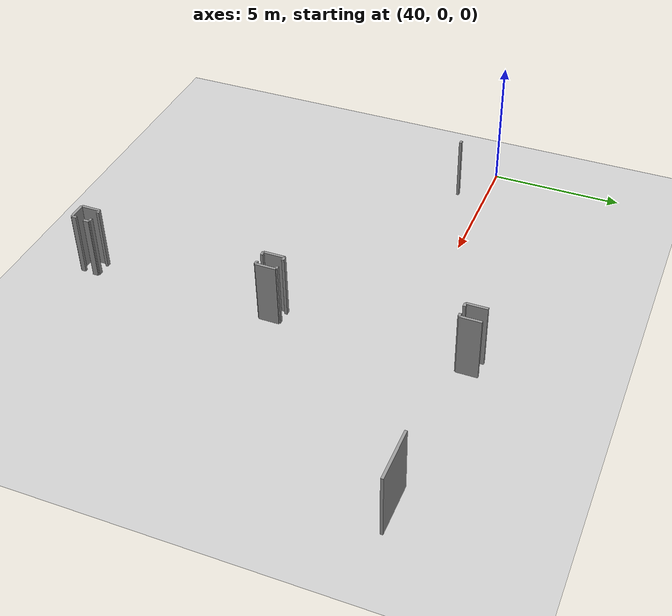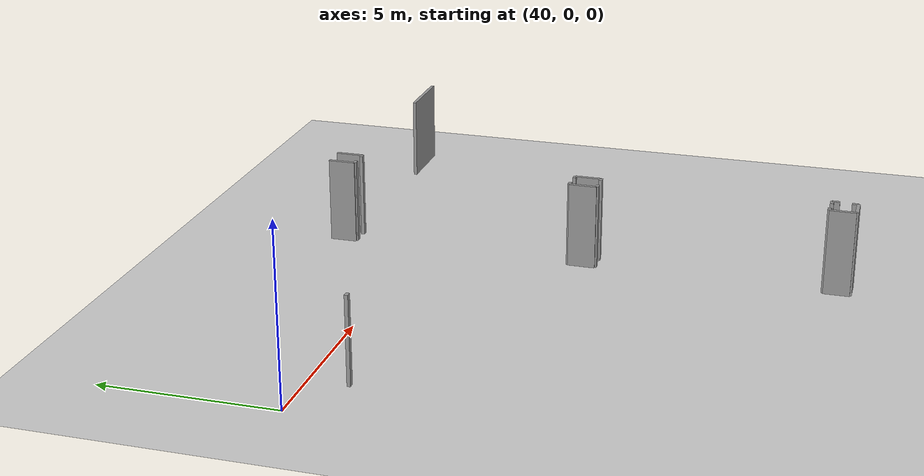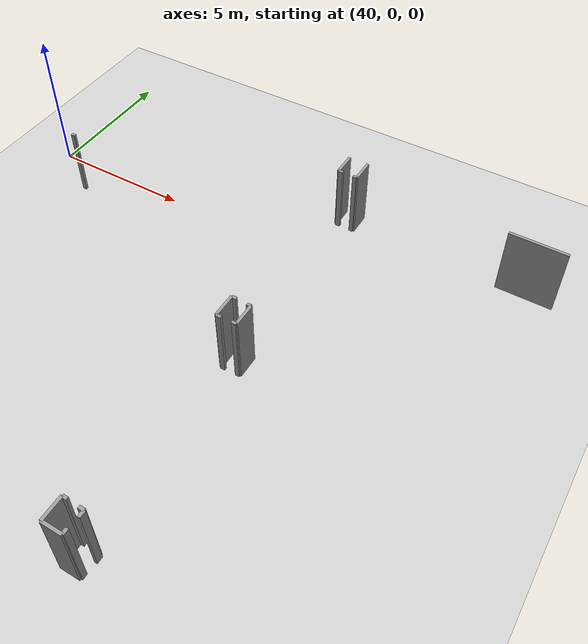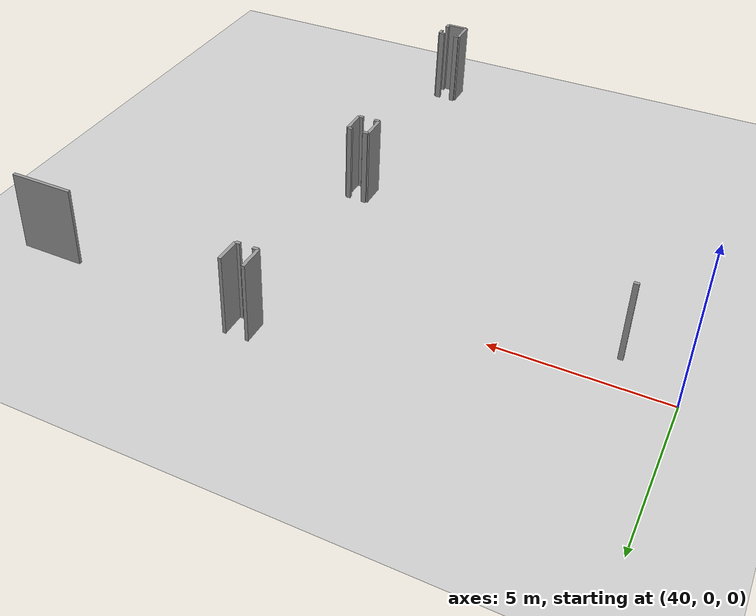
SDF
<sdf version="1.6">
 <world name="default">
  <model name="ground_plane">
   <static>1</static>
   <link name="link">
    <collision name="collision">
     <geometry><plane><normal>0 0 1</normal><size>100 100</size></plane></geometry>
     <surface><friction><ode><mu>100</mu><mu2>50</mu2></ode></friction></surface>
    </collision>
    <visual name="visual">
     <cast_shadows>0</cast_shadows>
     <geometry><plane><normal>0 0 1</normal><size>100 100</size></plane></geometry>
     <material>
      <script><uri>file://media/materials/scripts/gazebo.material</uri><name>Gazebo/Grey</name></script>
     </material>
    </visual>
   </link>
  </model>
  <model name="50010535_PLAN1">
   <static>1</static>
   <link name="Wall_369">
    <collision name="Wall_369_Collision">
     <geometry><box><size>0.149425360381 0.1 2.5</size></box></geometry>
     <pose>0.0747126801903 0 1.25 0 0 0</pose>
    </collision>
    <visual name="Wall_369_Visual">
     <pose>0.0747126801903 0 1.25 0 0 0</pose>
     <geometry><box><size>0.149425360381 0.1 2.5</size></box></geometry>
     <material>
      <script><uri>file://media/materials/scripts/gazebo.material</uri><name>Gazebo/Grey</name></script>
      <ambient>1 1 1 1</ambient>
     </material>
    </visual>
    <pose>144.397501954 -30.6105982732 0 0 0 3.14159265359</pose>
   </link>
   <link name="Wall_387">
    <collision name="Wall_387_Collision">
     <geometry><box><size>0.212702426256 0.1 2.5</size></box></geometry>
     <pose>0.106351213128 0 1.25 0 0 0</pose>
    </collision>
    <visual name="Wall_387_Visual">
     <pose>0.106351213128 0 1.25 0 0 0</pose>
     <geometry><box><size>0.212702426256 0.1 2.5</size></box></geometry>
     <material>
      <script><uri>file://media/materials/scripts/gazebo.material</uri><name>Gazebo/Grey</name></script>
      <ambient>1 1 1 1</ambient>
     </material>
    </visual>
    <pose>153.97953025 -41.6169958641 0 0 0 1.57079632679</pose>
   </link>
   <link name="Wall_388">
    <collision name="Wall_388_Collision">
     <geometry><box><size>0.176616709974 0.1 2.5</size></box></geometry>
     <pose>0.0883083549869 0 1.25 0 0 0</pose>
    </collision>
    <visual name="Wall_388_Visual">
     <pose>0.0883083549869 0 1.25 0 0 0</pose>
     <geometry><box><size>0.176616709974 0.1 2.5</size></box></geometry>
     <material>
      <script><uri>file://media/materials/scripts/gazebo.material</uri><name>Gazebo/Grey</name></script>
      <ambient>1 1 1 1</ambient>
     </material>
    </visual>
    <pose>153.97953025 -41.4042934379 0 0 0 3.14159265359</pose>
   </link>
   <link name="Wall_389">
    <collision name="Wall_389_Collision">
     <geometry><box><size>0.146629987993 0.1 2.5</size></box></geometry>
     <pose>0.0733149939963 0 1.25 0 0 0</pose>
    </collision>
    <visual name="Wall_389_Visual">
     <pose>0.0733149939963 0 1.25 0 0 0</pose>
     <geometry><box><size>0.146629987993 0.1 2.5</size></box></geometry>
     <material>
      <script><uri>file://media/materials/scripts/gazebo.material</uri><name>Gazebo/Grey</name></script>
      <ambient>1 1 1 1</ambient>
     </material>
    </visual>
    <pose>153.80291354 -34.8499075621 0 0 0 0.0</pose>
   </link>
   <link name="Wall_390">
    <collision name="Wall_390_Collision">
     <geometry><box><size>0.770506280058 0.1 2.5</size></box></geometry>
     <pose>0.385253140029 0 1.25 0 0 0</pose>
    </collision>
    <visual name="Wall_390_Visual">
     <pose>0.385253140029 0 1.25 0 0 0</pose>
     <geometry><box><size>0.770506280058 0.1 2.5</size></box></geometry>
     <material>
      <script><uri>file://media/materials/scripts/gazebo.material</uri><name>Gazebo/Grey</name></script>
      <ambient>1 1 1 1</ambient>
     </material>
    </visual>
    <pose>153.949543528 -34.8499075621 0 0 0 1.57079632679</pose>
   </link>
   <link name="Wall_391">
    <collision name="Wall_391_Collision">
     <geometry><box><size>0.141293367979 0.1 2.5</size></box></geometry>
     <pose>0.0706466839895 0 1.25 0 0 0</pose>
    </collision>
    <visual name="Wall_391_Visual">
     <pose>0.0706466839895 0 1.25 0 0 0</pose>
     <geometry><box><size>0.141293367979 0.1 2.5</size></box></geometry>
     <material>
      <script><uri>file://media/materials/scripts/gazebo.material</uri><name>Gazebo/Grey</name></script>
      <ambient>1 1 1 1</ambient>
     </material>
    </visual>
    <pose>153.949543528 -34.0794012821 0 0 0 3.14159265359</pose>
   </link>
   <link name="Wall_392">
    <collision name="Wall_392_Collision">
     <geometry><box><size>0.143834615605 0.1 2.5</size></box></geometry>
     <pose>0.0719173078023 0 1.25 0 0 0</pose>
    </collision>
    <visual name="Wall_392_Visual">
     <pose>0.0719173078023 0 1.25 0 0 0</pose>
     <geometry><box><size>0.143834615605 0.1 2.5</size></box></geometry>
     <material>
      <script><uri>file://media/materials/scripts/gazebo.material</uri><name>Gazebo/Grey</name></script>
      <ambient>1 1 1 1</ambient>
     </material>
    </visual>
    <pose>153.80825016 -27.5438206387 0 0 0 0.0</pose>
   </link>
   <link name="Wall_393">
    <collision name="Wall_393_Collision">
     <geometry><box><size>0.797443504889 0.1 2.5</size></box></geometry>
     <pose>0.398721752444 0 1.25 0 0 0</pose>
    </collision>
    <visual name="Wall_393_Visual">
     <pose>0.398721752444 0 1.25 0 0 0</pose>
     <geometry><box><size>0.797443504889 0.1 2.5</size></box></geometry>
     <material>
      <script><uri>file://media/materials/scripts/gazebo.material</uri><name>Gazebo/Grey</name></script>
      <ambient>1 1 1 1</ambient>
     </material>
    </visual>
    <pose>153.952084776 -27.5438206387 0 0 0 1.57079632679</pose>
   </link>
   <link name="Wall_402">
    <collision name="Wall_402_Collision">
     <geometry><box><size>1.95549803979 0.1 2.5</size></box></geometry>
     <pose>0.977749019895 0 1.25 0 0 0</pose>
    </collision>
    <visual name="Wall_402_Visual">
     <pose>0.977749019895 0 1.25 0 0 0</pose>
     <geometry><box><size>1.95549803979 0.1 2.5</size></box></geometry>
     <material>
      <script><uri>file://media/materials/scripts/gazebo.material</uri><name>Gazebo/Grey</name></script>
      <ambient>1 1 1 1</ambient>
     </material>
    </visual>
    <pose>159.237625712 -27.4393753613 0 0 0 -0.00285899156056</pose>
   </link>
   <link name="Wall_420">
    <collision name="Wall_420_Collision">
     <geometry><box><size>0.788549138199 0.1 2.5</size></box></geometry>
     <pose>0.3942745691 0 1.25 0 0 0</pose>
    </collision>
    <visual name="Wall_420_Visual">
     <pose>0.3942745691 0 1.25 0 0 0</pose>
     <geometry><box><size>0.788549138199 0.1 2.5</size></box></geometry>
     <material>
      <script><uri>file://media/materials/scripts/gazebo.material</uri><name>Gazebo/Grey</name></script>
      <ambient>1 1 1 1</ambient>
     </material>
    </visual>
    <pose>153.265693792 -26.7506972548 0 0 0 -1.57079632679</pose>
   </link>
   <link name="Wall_421">
    <collision name="Wall_421_Collision">
     <geometry><box><size>0.166451719472 0.1 2.5</size></box></geometry>
     <pose>0.0832258597358 0 1.25 0 0 0</pose>
    </collision>
    <visual name="Wall_421_Visual">
     <pose>0.0832258597358 0 1.25 0 0 0</pose>
     <geometry><box><size>0.166451719472 0.1 2.5</size></box></geometry>
     <material>
      <script><uri>file://media/materials/scripts/gazebo.material</uri><name>Gazebo/Grey</name></script>
      <ambient>1 1 1 1</ambient>
     </material>
    </visual>
    <pose>153.265693792 -27.539246393 0 0 0 0.0</pose>
   </link>
   <link name="Wall_422">
    <collision name="Wall_422_Collision">
     <geometry><box><size>0.163148097558 0.1 2.5</size></box></geometry>
     <pose>0.0815740487792 0 1.25 0 0 0</pose>
    </collision>
    <visual name="Wall_422_Visual">
     <pose>0.0815740487792 0 1.25 0 0 0</pose>
     <geometry><box><size>0.163148097558 0.1 2.5</size></box></geometry>
     <material>
      <script><uri>file://media/materials/scripts/gazebo.material</uri><name>Gazebo/Grey</name></script>
      <ambient>1 1 1 1</ambient>
     </material>
    </visual>
    <pose>153.432145512 -34.0590713011 0 0 0 3.14159265359</pose>
   </link>
   <link name="Wall_423">
    <collision name="Wall_423_Collision">
     <geometry><box><size>0.804304873478 0.1 2.5</size></box></geometry>
     <pose>0.402152436739 0 1.25 0 0 0</pose>
    </collision>
    <visual name="Wall_423_Visual">
     <pose>0.402152436739 0 1.25 0 0 0</pose>
     <geometry><box><size>0.804304873478 0.1 2.5</size></box></geometry>
     <material>
      <script><uri>file://media/materials/scripts/gazebo.material</uri><name>Gazebo/Grey</name></script>
      <ambient>1 1 1 1</ambient>
     </material>
    </visual>
    <pose>153.268997414 -34.0590713011 0 0 0 -1.57079632679</pose>
   </link>
   <link name="Wall_424">
    <collision name="Wall_424_Collision">
     <geometry><box><size>0.169501216622 0.1 2.5</size></box></geometry>
     <pose>0.0847506083112 0 1.25 0 0 0</pose>
    </collision>
    <visual name="Wall_424_Visual">
     <pose>0.0847506083112 0 1.25 0 0 0</pose>
     <geometry><box><size>0.169501216622 0.1 2.5</size></box></geometry>
     <material>
      <script><uri>file://media/materials/scripts/gazebo.material</uri><name>Gazebo/Grey</name></script>
      <ambient>1 1 1 1</ambient>
     </material>
    </visual>
    <pose>153.268997414 -34.8633761745 0 0 0 0.0</pose>
   </link>
   <link name="Wall_425">
    <collision name="Wall_425_Collision">
     <geometry><box><size>0.16035272517 0.1 2.5</size></box></geometry>
     <pose>0.0801763625852 0 1.25 0 0 0</pose>
    </collision>
    <visual name="Wall_425_Visual">
     <pose>0.0801763625852 0 1.25 0 0 0</pose>
     <geometry><box><size>0.16035272517 0.1 2.5</size></box></geometry>
     <material>
      <script><uri>file://media/materials/scripts/gazebo.material</uri><name>Gazebo/Grey</name></script>
      <ambient>1 1 1 1</ambient>
     </material>
    </visual>
    <pose>153.438498631 -41.3852340807 0 0 0 3.14159265359</pose>
   </link>
   <link name="Wall_426">
    <collision name="Wall_426_Collision">
     <geometry><box><size>0.747635051429 0.1 2.5</size></box></geometry>
     <pose>0.373817525714 0 1.25 0 0 0</pose>
    </collision>
    <visual name="Wall_426_Visual">
     <pose>0.373817525714 0 1.25 0 0 0</pose>
     <geometry><box><size>0.747635051429 0.1 2.5</size></box></geometry>
     <material>
      <script><uri>file://media/materials/scripts/gazebo.material</uri><name>Gazebo/Grey</name></script>
      <ambient>1 1 1 1</ambient>
     </material>
    </visual>
    <pose>153.278145906 -41.3852340807 0 0 0 -1.57079632679</pose>
   </link>
   <link name="Wall_427">
    <collision name="Wall_427_Collision">
     <geometry><box><size>0.65615013691 0.1 2.5</size></box></geometry>
     <pose>0.328075068455 0 1.25 0 0 0</pose>
    </collision>
    <visual name="Wall_427_Visual">
     <pose>0.328075068455 0 1.25 0 0 0</pose>
     <geometry><box><size>0.65615013691 0.1 2.5</size></box></geometry>
     <material>
      <script><uri>file://media/materials/scripts/gazebo.material</uri><name>Gazebo/Grey</name></script>
      <ambient>1 1 1 1</ambient>
     </material>
    </visual>
    <pose>153.278145906 -42.1328691321 0 0 0 0.0</pose>
   </link>
   <link name="Wall_428">
    <collision name="Wall_428_Collision">
     <geometry><box><size>0.182715704275 0.1 2.5</size></box></geometry>
     <pose>0.0913578521375 0 1.25 0 0 0</pose>
    </collision>
    <visual name="Wall_428_Visual">
     <pose>0.0913578521375 0 1.25 0 0 0</pose>
     <geometry><box><size>0.182715704275 0.1 2.5</size></box></geometry>
     <material>
      <script><uri>file://media/materials/scripts/gazebo.material</uri><name>Gazebo/Grey</name></script>
      <ambient>1 1 1 1</ambient>
     </material>
    </visual>
    <pose>153.934296043 -42.1328691321 0 0 0 1.57079632679</pose>
   </link>
   <pose>-102.6 29.5103111122 0 0 0 0</pose>
  </model>
 </world>
</sdf>
